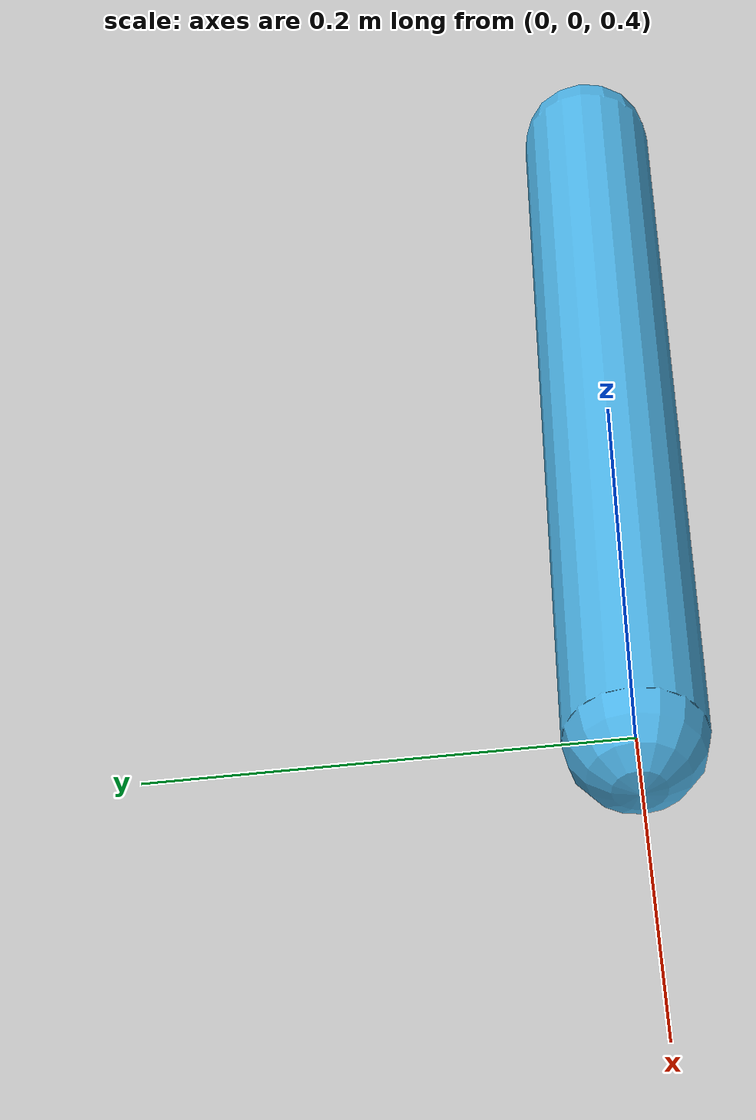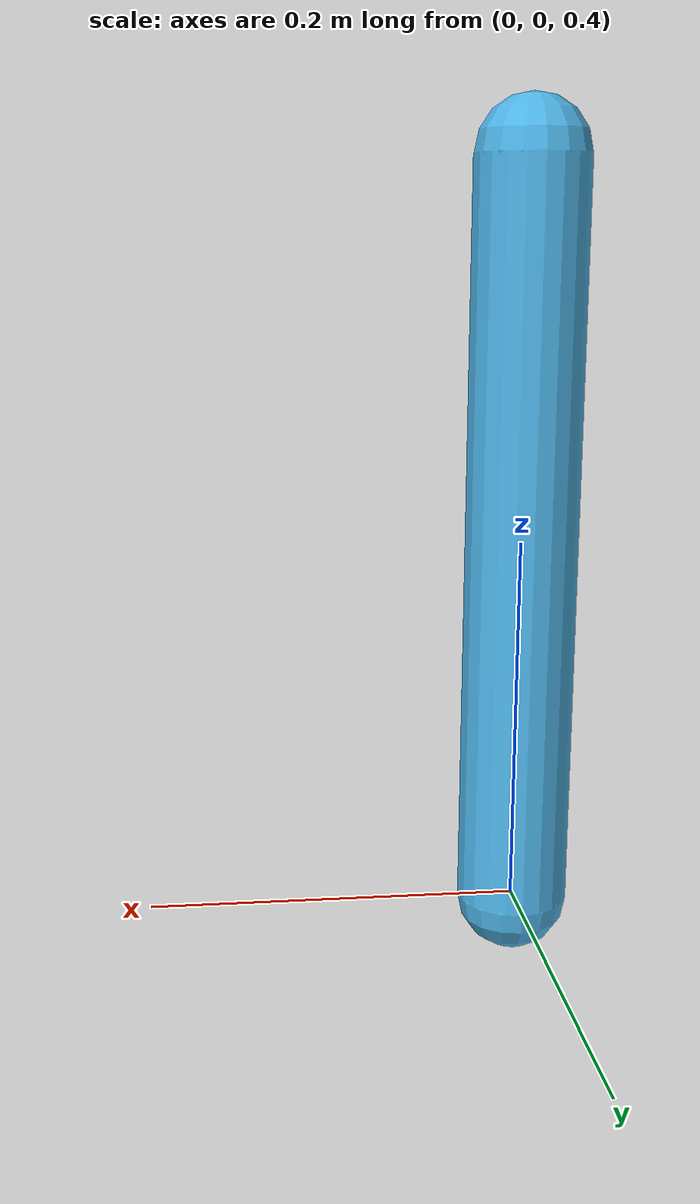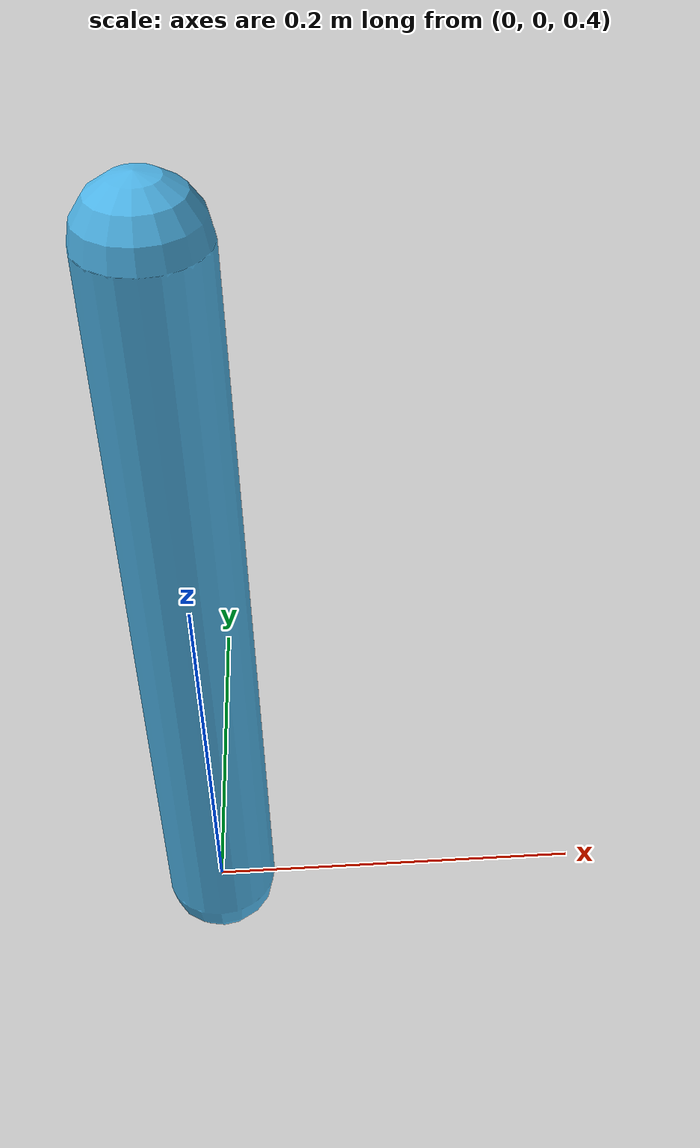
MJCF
<mujoco model="calibrated encoder plugin">
  <option timestep="0.002"/>
  <extension>
    <plugin plugin="book.sensor.calibrated_joint">
      <instance name="encoder_calibration">
        <config key="gain" value="57.2957795"/>
        <config key="offset" value="1.5"/>
      </instance>
    </plugin>
  </extension>
  <worldbody>
    <light pos="0 -2 3"/>
    <body pos="0 0 .8">
      <joint name="hinge" axis="0 1 0" damping=".1"/>
      <geom type="capsule" fromto="0 0 0 0 0 -.4" size=".03"
            mass="1" rgba=".3 .7 .9 1"/>
    </body>
  </worldbody>
  <sensor>
    <plugin name="joint_encoder" instance="encoder_calibration"/>
  </sensor>
</mujoco>
